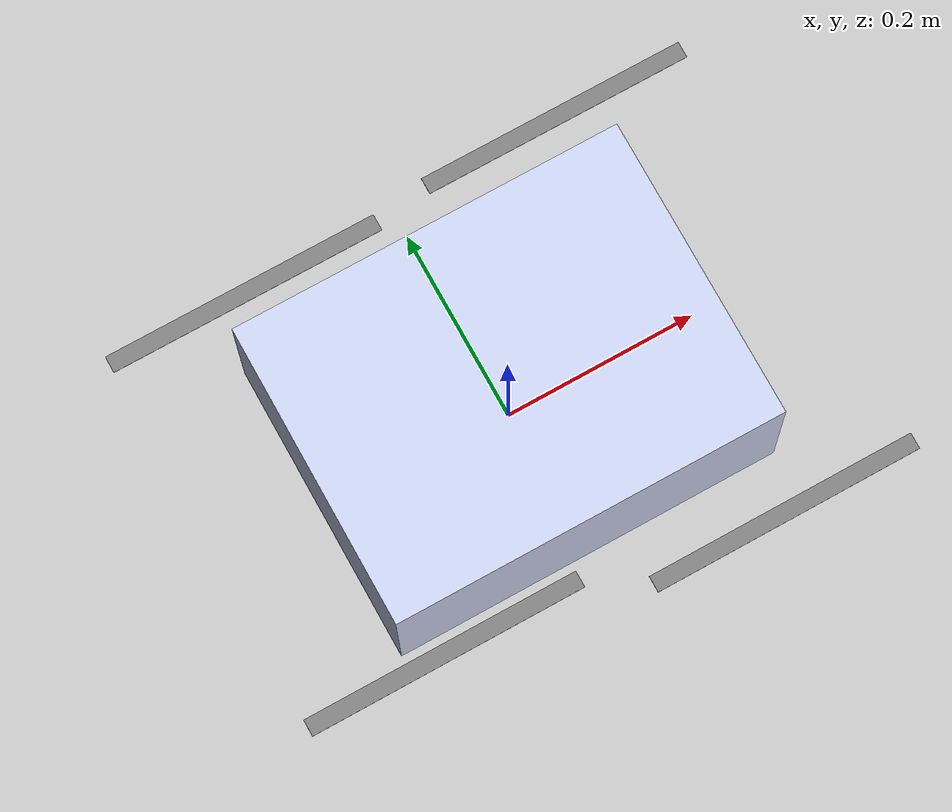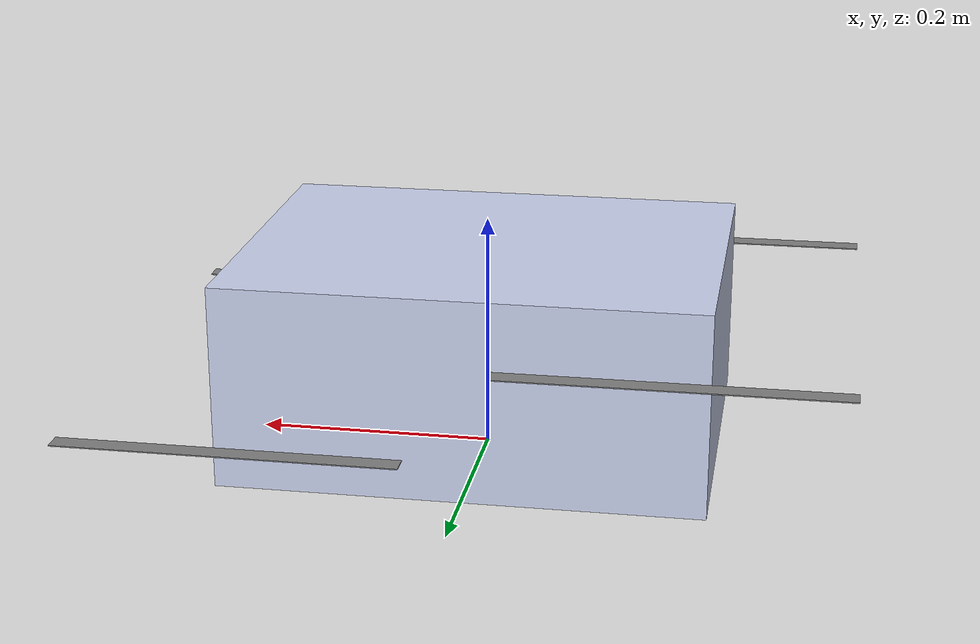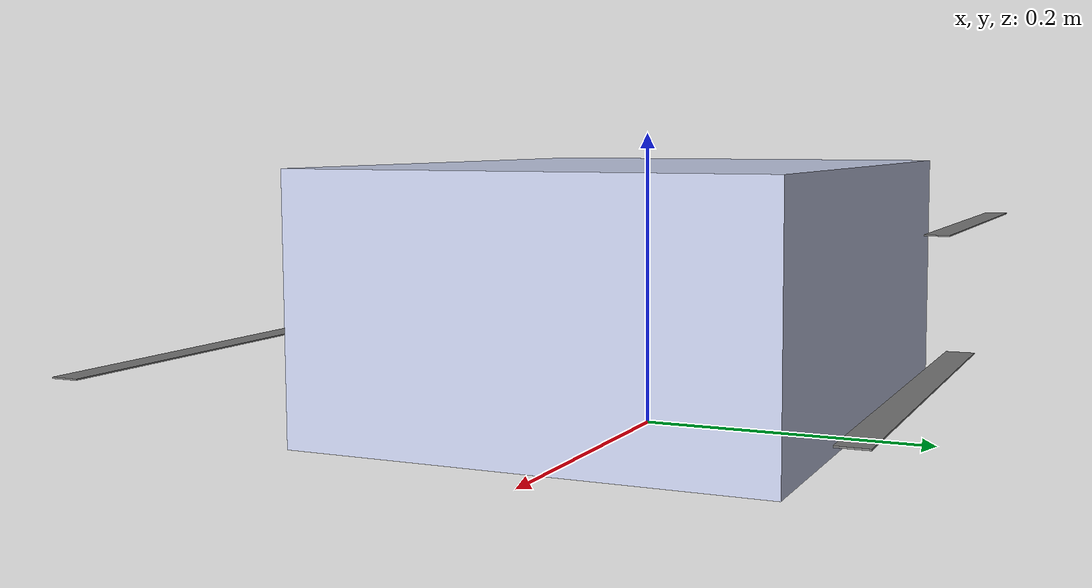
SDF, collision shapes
<?xml version="1.0" encoding="UTF-8"?>
<sdf version='1.9'>
  <model name='sparrow'>
    <include merge='true'>
      <uri>model://sparrow_base</uri>
    </include>
    <plugin filename="gz-sim-multicopter-motor-model-system"
      name="gz::sim::systems::MulticopterMotorModel">
      <jointName>rotor_0_joint</jointName>
      <linkName>rotor_0</linkName>
      <turningDirection>ccw</turningDirection>
      <timeConstantUp>0.0125</timeConstantUp>
      <timeConstantDown>0.025</timeConstantDown>
      <maxRotVelocity>1400.0</maxRotVelocity>
      <motorConstant>8.54858e-06</motorConstant>
      <momentConstant>0.016</momentConstant>
      <commandSubTopic>command/motor_speed</commandSubTopic>
      <motorNumber>0</motorNumber>
      <rotorDragCoefficient>8.06428e-05</rotorDragCoefficient>
      <rollingMomentCoefficient>1e-06</rollingMomentCoefficient>
      <rotorVelocitySlowdownSim>10</rotorVelocitySlowdownSim>
      <motorType>velocity</motorType>
    </plugin>
    <plugin filename="gz-sim-multicopter-motor-model-system"
      name="gz::sim::systems::MulticopterMotorModel">
      <jointName>rotor_1_joint</jointName>
      <linkName>rotor_1</linkName>
      <turningDirection>ccw</turningDirection>
      <timeConstantUp>0.0125</timeConstantUp>
      <timeConstantDown>0.025</timeConstantDown>
      <maxRotVelocity>1400.0</maxRotVelocity>
      <motorConstant>8.54858e-06</motorConstant>
      <momentConstant>0.016</momentConstant>
      <commandSubTopic>command/motor_speed</commandSubTopic>
      <motorNumber>1</motorNumber>
      <rotorDragCoefficient>8.06428e-05</rotorDragCoefficient>
      <rollingMomentCoefficient>1e-06</rollingMomentCoefficient>
      <rotorVelocitySlowdownSim>10</rotorVelocitySlowdownSim>
      <motorType>velocity</motorType>
    </plugin>
    <plugin filename="gz-sim-multicopter-motor-model-system"
      name="gz::sim::systems::MulticopterMotorModel">
      <jointName>rotor_2_joint</jointName>
      <linkName>rotor_2</linkName>
      <turningDirection>cw</turningDirection>
      <timeConstantUp>0.0125</timeConstantUp>
      <timeConstantDown>0.025</timeConstantDown>
      <maxRotVelocity>1400.0</maxRotVelocity>
      <motorConstant>8.54858e-06</motorConstant>
      <momentConstant>0.016</momentConstant>
      <commandSubTopic>command/motor_speed</commandSubTopic>
      <motorNumber>2</motorNumber>
      <rotorDragCoefficient>8.06428e-05</rotorDragCoefficient>
      <rollingMomentCoefficient>1e-06</rollingMomentCoefficient>
      <rotorVelocitySlowdownSim>10</rotorVelocitySlowdownSim>
      <motorType>velocity</motorType>
    </plugin>
    <plugin filename="gz-sim-multicopter-motor-model-system"
      name="gz::sim::systems::MulticopterMotorModel">
      <jointName>rotor_3_joint</jointName>
      <linkName>rotor_3</linkName>
      <turningDirection>cw</turningDirection>
      <timeConstantUp>0.0125</timeConstantUp>
      <timeConstantDown>0.025</timeConstantDown>
      <maxRotVelocity>1400.0</maxRotVelocity>
      <motorConstant>8.54858e-06</motorConstant>
      <momentConstant>0.016</momentConstant>
      <commandSubTopic>command/motor_speed</commandSubTopic>
      <motorNumber>3</motorNumber>
      <rotorDragCoefficient>8.06428e-05</rotorDragCoefficient>
      <rollingMomentCoefficient>1e-06</rollingMomentCoefficient>
      <rotorVelocitySlowdownSim>10</rotorVelocitySlowdownSim>
      <motorType>velocity</motorType>
    </plugin>
  </model>
</sdf>

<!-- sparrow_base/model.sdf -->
<sdf version='1.9'>
  <model name='sparrow_base'>
    <!-- model frame is the provisional Sparrow CG in GZ FLU; world z=.10 m -->
    <pose>0 0 .10 0 0 0</pose>
    <self_collide>false</self_collide>
    <static>false</static>
    <link name="base_link">
      <inertial>
        <pose>-0.027265 0 0.012768 0 0 0</pose>
        <mass>2.10</mass>
        <inertia>
          <!-- diagonal inertia at the stated base_link CG, kg m^2 -->
          <ixx>0.054</ixx>
          <ixy>0</ixy>
          <ixz>0</ixz>
          <iyy>0.049</iyy>
          <iyz>0</iyz>
          <izz>0.088</izz>
        </inertia>
      </inertial>
      <gravity>true</gravity>
      <velocity_decay />
      <visual name="base_link_visual">
        <!-- CAD->GZ: Rz(pi/2), with the CAD CG translated to model origin. -->
        <pose>0.03061 0 -0.07075 0 0 1.570796327</pose>
        <geometry>
          <mesh>
            <scale>1 1 1</scale>
            <uri>model://sparrow_base/meshes/base_link.STL</uri>
          </mesh>
        </geometry>
        <material>
          <ambient>0.79 0.82 0.93 1</ambient>
          <diffuse>0.79 0.82 0.93 1</diffuse>
          <specular>0.5 0.5 0.5 1</specular>
        </material>
      </visual>
      <!-- One light body collision inside the CAD shell; no x500 landing legs. -->
      <collision name="sparrow_body_collision">
        <!-- Bottom -0.09075 m matches the transformed CAD mesh bottom, so the
             rendered Sparrow rests on the ground instead of sinking into it. -->
        <pose>0 0 -0.00575 0 0 0</pose>
        <geometry>
          <box>
            <size>0.40 0.31 0.17</size>
          </box>
        </geometry>
        <surface>
          <contact>
            <ode>
              <min_depth>0.001</min_depth>
              <max_vel>0</max_vel>
            </ode>
          </contact>
          <friction>
            <ode />
          </friction>
        </surface>
      </collision>
      <sensor name="air_pressure_sensor" type="air_pressure">
        <gz_frame_id>base_link</gz_frame_id>
        <always_on>1</always_on>
        <update_rate>50</update_rate>
        <air_pressure>
          <!-- Noise modeled after BMP390 -->
          <pressure>
            <noise type="gaussian">
              <mean>0</mean>
              <stddev>3</stddev>
            </noise>
          </pressure>
        </air_pressure>
      </sensor>
      <sensor name="magnetometer_sensor" type="magnetometer">
        <gz_frame_id>base_link</gz_frame_id>
        <always_on>1</always_on>
        <update_rate>100</update_rate>
        <magnetometer>
          <!-- TODO: update to fix units and coordinate system when we move past Harmonic -->
          <!-- See https://github.com/gazebosim/gz-sim/pull/2460 -->
          <!-- 3mgauss RMS: NOTE: noise is in tesla but sensor reports data in gauss -->
          <!-- Noise modeled after IIS2MDC -->
          <x>
            <noise type="gaussian">
              <stddev>0.0001</stddev>
            </noise>
          </x>
          <y>
            <noise type="gaussian">
              <stddev>0.0001</stddev>
            </noise>
          </y>
          <z>
            <noise type="gaussian">
              <stddev>0.0001</stddev>
            </noise>
          </z>
        </magnetometer>
      </sensor>
      <sensor name="imu_sensor" type="imu">
        <gz_frame_id>base_link</gz_frame_id>
        <always_on>1</always_on>
        <update_rate>250</update_rate>
        <imu>
          <angular_velocity>
            <!-- Noise modeled after IIM42653 -->
            <!-- 0.05 deg/s converted to rad/s -->
            <x>
              <noise type="gaussian">
                <mean>0.0</mean>
                <stddev>0.0008726646</stddev>
              </noise>
            </x>
            <y>
              <noise type="gaussian">
                <mean>0.0</mean>
                <stddev>0.0008726646</stddev>
              </noise>
            </y>
            <z>
              <noise type="gaussian">
                <mean>0.0</mean>
                <stddev>0.0008726646</stddev>
              </noise>
            </z>
          </angular_velocity>
          <linear_acceleration>
            <!-- Noise modeled after IIM42653 -->
            <!-- X & Y axis: 0.65 mg-rms converted to m/ss -->
            <x>
              <noise type="gaussian">
                <mean>0.0</mean>
                <stddev>0.00637</stddev>
              </noise>
            </x>
            <y>
              <noise type="gaussian">
                <mean>0.0</mean>
                <stddev>0.00637</stddev>
              </noise>
            </y>
            <!-- Z axis: 0.70 mg-rms converted to m/ss-->
            <z>
              <noise type="gaussian">
                <mean>0.0</mean>
                <stddev>0.00686</stddev>
              </noise>
            </z>
          </linear_acceleration>
        </imu>
      </sensor>
      <sensor name="navsat_sensor" type="navsat">
        <gz_frame_id>base_link</gz_frame_id>
        <always_on>1</always_on>
        <update_rate>30</update_rate>
      </sensor>
    </link>
    <link name="rotor_0">
      <gravity>true</gravity>
      <self_collide>false</self_collide>
      <velocity_decay />
      <!-- URDF M1 origin, expressed in GZ FLU about the declared CG. -->
      <pose>0.17140 -0.21837 -0.03325 0 0 0</pose>
      <inertial>
        <!-- 3506 motor + 13-inch prop lump at the spin centre. -->
        <pose>0 0 0 0 0 0</pose>
        <mass>0.15</mass>
        <inertia>
          <ixx>0.000882</ixx>
          <iyy>0.000884</iyy>
          <izz>0.001763</izz>
        </inertia>
      </inertial>
      <visual name="rotor_0_visual">
        <pose>0 0 0 1.5708 0 0.826956327</pose>
        <geometry>
          <mesh>
            <scale>1 1 1</scale>
            <uri>model://sparrow_base/meshes/M1.STL</uri>
          </mesh>
        </geometry>
        <material>
          <ambient>0.5 0.5 0.5 1</ambient>
          <diffuse>0.5 0.5 0.5 1</diffuse>
          <specular>0.5 0.5 0.5 1</specular>
        </material>
      </visual>
      <collision name="rotor_0_collision">
        <pose>0 0 0 0 0 0 </pose>
        <geometry>
          <box>
            <size>0.2792307692307692 0.016923076923076923 0.0008461538461538462</size>
          </box>
        </geometry>
        <surface>
          <contact>
            <ode>
              <min_depth>0.001</min_depth>
              <max_vel>0</max_vel>
            </ode>
          </contact>
          <friction>
            <ode />
          </friction>
        </surface>
      </collision>
    </link>
    <joint name="rotor_0_joint" type="revolute">
      <parent>base_link</parent>
      <child>rotor_0</child>
      <axis>
        <xyz>0 0 1</xyz>
        <limit>
          <lower>-1e+16</lower>
          <upper>1e+16</upper>
        </limit>
        <dynamics>
          <spring_reference>0</spring_reference>
          <spring_stiffness>0</spring_stiffness>
        </dynamics>
      </axis>
    </joint>
    <link name="rotor_1">
      <gravity>true</gravity>
      <self_collide>false</self_collide>
      <velocity_decay />
      <!-- URDF M2 origin, expressed in GZ FLU about the declared CG. -->
      <pose>-0.17140 0.19143 0.03325 0 0 0</pose>
      <inertial>
        <pose>0 0 0 0 0 0</pose>
        <mass>0.15</mass>
        <inertia>
          <ixx>0.000882</ixx>
          <iyy>0.000884</iyy>
          <izz>0.001763</izz>
        </inertia>
      </inertial>
      <visual name="rotor_1_visual">
        <pose>0 0 0 1.5708 0 0.954286327</pose>
        <geometry>
          <mesh>
            <scale>1 1 1</scale>
            <uri>model://sparrow_base/meshes/M2.STL</uri>
          </mesh>
        </geometry>
        <material>
          <ambient>0.5 0.5 0.5 1</ambient>
          <diffuse>0.5 0.5 0.5 1</diffuse>
          <specular>0.5 0.5 0.5 1</specular>
        </material>
      </visual>
      <collision name="rotor_1_collision">
        <pose>0 0 0 0 0 0 </pose>
        <geometry>
          <box>
            <size>0.2792307692307692 0.016923076923076923 0.0008461538461538462</size>
          </box>
        </geometry>
        <surface>
          <contact>
            <ode>
              <min_depth>0.001</min_depth>
              <max_vel>0</max_vel>
            </ode>
          </contact>
          <friction>
            <ode />
          </friction>
        </surface>
      </collision>
    </link>
    <joint name="rotor_1_joint" type="revolute">
      <parent>base_link</parent>
      <child>rotor_1</child>
      <axis>
        <xyz>0 0 1</xyz>
        <limit>
          <lower>-1e+16</lower>
          <upper>1e+16</upper>
        </limit>
        <dynamics>
          <spring_reference>0</spring_reference>
          <spring_stiffness>0</spring_stiffness>
        </dynamics>
      </axis>
    </joint>
    <link name="rotor_2">
      <gravity>true</gravity>
      <self_collide>false</self_collide>
      <velocity_decay />
      <!-- URDF M3 origin, expressed in GZ FLU about the declared CG. -->
      <pose>0.17140 0.21837 -0.03325 0 0 0</pose>
      <inertial>
        <pose>0 0 0 0 0 0</pose>
        <mass>0.15</mass>
        <inertia>
          <ixx>0.000882</ixx>
          <iyy>0.000884</iyy>
          <izz>0.001763</izz>
        </inertia>
      </inertial>
      <visual name="rotor_2_visual">
        <pose>0 0 0 1.5708 0 2.292886327</pose>
        <geometry>
          <mesh>
            <scale>1 1 1</scale>
            <uri>model://sparrow_base/meshes/M3.STL</uri>
          </mesh>
        </geometry>
        <material>
          <ambient>0.5 0.5 0.5 1</ambient>
          <diffuse>0.5 0.5 0.5 1</diffuse>
          <specular>0.5 0.5 0.5 1</specular>
        </material>
      </visual>
      <collision name="rotor_2_collision">
        <pose>0 0 0 0 0 0 </pose>
        <geometry>
          <box>
            <size>0.2792307692307692 0.016923076923076923 0.0008461538461538462</size>
          </box>
        </geometry>
        <surface>
          <contact>
            <ode>
              <min_depth>0.001</min_depth>
              <max_vel>0</max_vel>
            </ode>
          </contact>
          <friction>
            <ode />
          </friction>
        </surface>
      </collision>
    </link>
    <joint name="rotor_2_joint" type="revolute">
      <parent>base_link</parent>
      <child>rotor_2</child>
      <axis>
        <xyz>0 0 1</xyz>
        <limit>
          <lower>-1e+16</lower>
          <upper>1e+16</upper>
        </limit>
        <dynamics>
          <spring_reference>0</spring_reference>
          <spring_stiffness>0</spring_stiffness>
        </dynamics>
      </axis>
    </joint>
    <link name="rotor_3">
      <gravity>true</gravity>
      <self_collide>false</self_collide>
      <velocity_decay />
      <!-- URDF M4 origin, expressed in GZ FLU about the declared CG. -->
      <pose>-0.17140 -0.19143 0.03325 0 0 0</pose>
      <inertial>
        <pose>0 0 0 0 0 0</pose>
        <mass>0.15</mass>
        <inertia>
          <ixx>0.000882</ixx>
          <iyy>0.000884</iyy>
          <izz>0.001763</izz>
        </inertia>
      </inertial>
      <visual name="rotor_3_visual">
        <pose>0 0 0 1.5708 0 -0.937103673</pose>
        <geometry>
          <mesh>
            <scale>1 1 1</scale>
            <uri>model://sparrow_base/meshes/M4.STL</uri>
          </mesh>
        </geometry>
        <material>
          <ambient>0.5 0.5 0.5 1</ambient>
          <diffuse>0.5 0.5 0.5 1</diffuse>
          <specular>0.5 0.5 0.5 1</specular>
        </material>
      </visual>
      <collision name="rotor_3_collision">
        <pose>0 0 0 0 0 0 </pose>
        <geometry>
          <box>
            <size>0.2792307692307692 0.016923076923076923 0.0008461538461538462</size>
          </box>
        </geometry>
        <surface>
          <contact>
            <ode>
              <min_depth>0.001</min_depth>
              <max_vel>0</max_vel>
            </ode>
          </contact>
          <friction>
            <ode />
          </friction>
        </surface>
      </collision>
    </link>
    <joint name="rotor_3_joint" type="revolute">
      <parent>base_link</parent>
      <child>rotor_3</child>
      <axis>
        <xyz>0 0 1</xyz>
        <limit>
          <lower>-1e+16</lower>
          <upper>1e+16</upper>
        </limit>
        <dynamics>
          <spring_reference>0</spring_reference>
          <spring_stiffness>0</spring_stiffness>
        </dynamics>
      </axis>
    </joint>
  </model>
</sdf>
